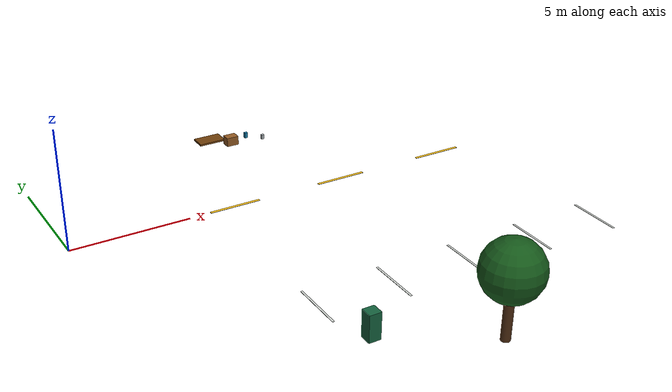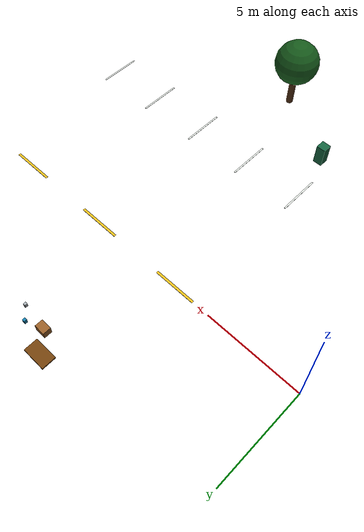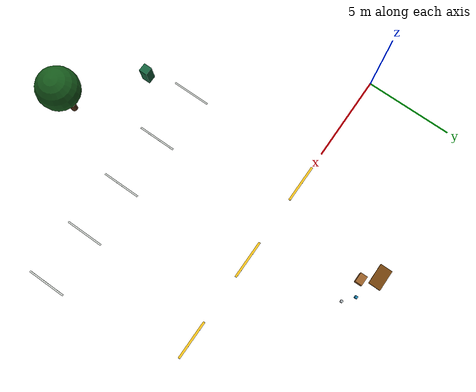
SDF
<sdf version="1.9">
 <world name="sanitation_campus_medium">
  <model name="center_dash_09">
   <static>true</static>
   <pose>7.0 0 0.012 0 0 0</pose>
   <link name="link">
    <visual name="visual">
     <geometry><box><size>2.2 0.12 0.012</size></box></geometry>
     <material>
      <ambient>0.95 0.74 0.10 1</ambient>
      <diffuse>0.95 0.74 0.10 1</diffuse>
      <specular>0.04 0.04 0.04 1</specular>
     </material>
    </visual>
   </link>
  </model>
  <model name="center_dash_10">
   <static>true</static>
   <pose>12.0 0 0.012 0 0 0</pose>
   <link name="link">
    <visual name="visual">
     <geometry><box><size>2.2 0.12 0.012</size></box></geometry>
     <material>
      <ambient>0.95 0.74 0.10 1</ambient>
      <diffuse>0.95 0.74 0.10 1</diffuse>
      <specular>0.04 0.04 0.04 1</specular>
     </material>
    </visual>
   </link>
  </model>
  <model name="center_dash_11">
   <static>true</static>
   <pose>17.0 0 0.012 0 0 0</pose>
   <link name="link">
    <visual name="visual">
     <geometry><box><size>2.2 0.12 0.012</size></box></geometry>
     <material>
      <ambient>0.95 0.74 0.10 1</ambient>
      <diffuse>0.95 0.74 0.10 1</diffuse>
      <specular>0.04 0.04 0.04 1</specular>
     </material>
    </visual>
   </link>
  </model>
  <model name="parking_line_-1_1">
   <static>true</static>
   <pose>6.2 -7.9 0.013 0 0 0</pose>
   <link name="link">
    <visual name="visual">
     <geometry><box><size>0.08 2.2 0.012</size></box></geometry>
     <material>
      <ambient>0.86 0.88 0.86 1</ambient>
      <diffuse>0.86 0.88 0.86 1</diffuse>
      <specular>0.04 0.04 0.04 1</specular>
     </material>
    </visual>
   </link>
  </model>
  <model name="parking_line_-1_2">
   <static>true</static>
   <pose>9.4 -7.9 0.013 0 0 0</pose>
   <link name="link">
    <visual name="visual">
     <geometry><box><size>0.08 2.2 0.012</size></box></geometry>
     <material>
      <ambient>0.86 0.88 0.86 1</ambient>
      <diffuse>0.86 0.88 0.86 1</diffuse>
      <specular>0.04 0.04 0.04 1</specular>
     </material>
    </visual>
   </link>
  </model>
  <model name="parking_line_-1_3">
   <static>true</static>
   <pose>12.600000000000001 -7.9 0.013 0 0 0</pose>
   <link name="link">
    <visual name="visual">
     <geometry><box><size>0.08 2.2 0.012</size></box></geometry>
     <material>
      <ambient>0.86 0.88 0.86 1</ambient>
      <diffuse>0.86 0.88 0.86 1</diffuse>
      <specular>0.04 0.04 0.04 1</specular>
     </material>
    </visual>
   </link>
  </model>
  <model name="parking_line_-1_4">
   <static>true</static>
   <pose>15.8 -7.9 0.013 0 0 0</pose>
   <link name="link">
    <visual name="visual">
     <geometry><box><size>0.08 2.2 0.012</size></box></geometry>
     <material>
      <ambient>0.86 0.88 0.86 1</ambient>
      <diffuse>0.86 0.88 0.86 1</diffuse>
      <specular>0.04 0.04 0.04 1</specular>
     </material>
    </visual>
   </link>
  </model>
  <model name="parking_line_-1_5">
   <static>true</static>
   <pose>19.0 -7.9 0.013 0 0 0</pose>
   <link name="link">
    <visual name="visual">
     <geometry><box><size>0.08 2.2 0.012</size></box></geometry>
     <material>
      <ambient>0.86 0.88 0.86 1</ambient>
      <diffuse>0.86 0.88 0.86 1</diffuse>
      <specular>0.04 0.04 0.04 1</specular>
     </material>
    </visual>
   </link>
  </model>
  <model name="tree_11">
   <static>true</static>
   <pose>10.588235294117652 -12.7 0 0 0 0</pose>
   <link name="link">
    <collision name="trunk_collision">
     <geometry><cylinder><radius>0.18</radius><length>2.2</length></cylinder></geometry>
     <pose>0 0 1.1 0 0 0</pose>
    </collision>
    <visual name="trunk">
     <pose>0 0 1.1 0 0 0</pose>
     <geometry><cylinder><radius>0.18</radius><length>2.2</length></cylinder></geometry>
     <material>
      <ambient>0.30 0.17 0.07 1</ambient>
      <diffuse>0.30 0.17 0.07 1</diffuse>
      <specular>0.04 0.04 0.04 1</specular>
     </material>
    </visual>
    <visual name="crown">
     <pose>0 0 2.7 0 0 0</pose>
     <geometry><sphere><radius>1.15</radius></sphere></geometry>
     <material>
      <ambient>0.08 0.34 0.10 1</ambient>
      <diffuse>0.08 0.34 0.10 1</diffuse>
      <specular>0.04 0.04 0.04 1</specular>
     </material>
    </visual>
   </link>
  </model>
  <model name="waste_bin_1">
   <static>true</static>
   <pose>6.8 -10.4 0.55 0 0 0</pose>
   <link name="link">
    <collision name="collision"><geometry><box><size>0.48 0.48 1.1</size></box></geometry></collision>
    <visual name="visual">
     <geometry><box><size>0.48 0.48 1.1</size></box></geometry>
     <material>
      <ambient>0.08 0.38 0.24 1</ambient>
      <diffuse>0.08 0.38 0.24 1</diffuse>
      <specular>0.04 0.04 0.04 1</specular>
     </material>
    </visual>
   </link>
  </model>
  <model name="target_cardboard">
   <static>true</static>
   <pose>9.5 5.4 0.2 0 0 0</pose>
   <link name="link">
    <collision name="collision"><geometry><box><size>0.55 0.4 0.4</size></box></geometry></collision>
    <visual name="visual">
     <geometry><box><size>0.55 0.4 0.4</size></box></geometry>
     <material>
      <ambient>0.58 0.36 0.15 1</ambient>
      <diffuse>0.58 0.36 0.15 1</diffuse>
      <specular>0.04 0.04 0.04 1</specular>
     </material>
    </visual>
   </link>
  </model>
  <model name="target_bottle">
   <static>true</static>
   <pose>10.4 5.7 0.12 0 0 0</pose>
   <link name="link">
    <collision name="collision"><geometry><box><size>0.14 0.14 0.24</size></box></geometry></collision>
    <visual name="visual">
     <geometry><box><size>0.14 0.14 0.24</size></box></geometry>
     <material>
      <ambient>0.08 0.48 0.66 1</ambient>
      <diffuse>0.08 0.48 0.66 1</diffuse>
      <specular>0.04 0.04 0.04 1</specular>
     </material>
    </visual>
   </link>
  </model>
  <model name="target_can">
   <static>true</static>
   <pose>11.0 5.2 0.1 0 0 0</pose>
   <link name="link">
    <collision name="collision"><geometry><box><size>0.13 0.13 0.2</size></box></geometry></collision>
    <visual name="visual">
     <geometry><box><size>0.13 0.13 0.2</size></box></geometry>
     <material>
      <ambient>0.64 0.67 0.69 1</ambient>
      <diffuse>0.64 0.67 0.69 1</diffuse>
      <specular>0.04 0.04 0.04 1</specular>
     </material>
    </visual>
   </link>
  </model>
  <model name="target_leaf_pile">
   <static>true</static>
   <pose>8.8 6.2 0.04 0 0 0</pose>
   <link name="link">
    <visual name="visual">
     <geometry><box><size>1.2 0.7 0.08</size></box></geometry>
     <material>
      <ambient>0.44 0.25 0.05 1</ambient>
      <diffuse>0.44 0.25 0.05 1</diffuse>
      <specular>0.04 0.04 0.04 1</specular>
     </material>
    </visual>
   </link>
  </model>
 </world>
</sdf>
